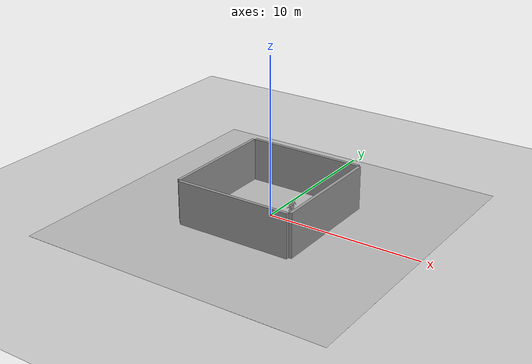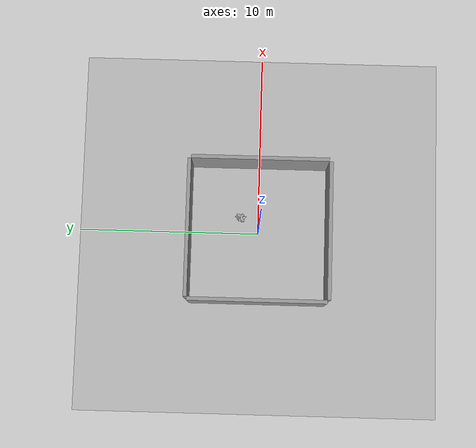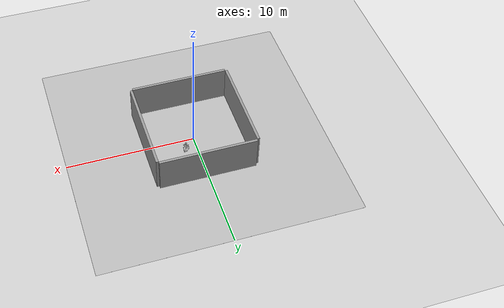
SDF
<sdf version="1.6">
 <world name="default">
  <light name="sun" type="directional">
   <pose>0 0 10 0 -0 0</pose>
   <diffuse>0.8 0.8 0.8 1</diffuse>
   <specular>0.1 0.1 0.1 1</specular>
   <attenuation>
    <range>1000</range>
    <constant>0.9</constant>
    <linear>0.01</linear>
    <quadratic>0.001</quadratic>
   </attenuation>
   <direction>-0.5 0.5 -1</direction>
  </light>
  <model name="ground_plane">
   <static>1</static>
   <link name="link">
    <collision name="collision">
     <geometry><plane><normal>0 0 1</normal><size>100 100</size></plane></geometry>
     <surface><friction><ode><mu>100</mu><mu2>50</mu2></ode></friction></surface>
    </collision>
    <visual name="visual">
     <cast_shadows>0</cast_shadows>
     <geometry><plane><normal>0 0 1</normal><size>100 100</size></plane></geometry>
     <material>
      <script><uri>file://media/materials/scripts/gazebo.material</uri><name>Gazebo/Grey</name></script>
     </material>
    </visual>
   </link>
  </model>
  <gravity>0 0 -9.8</gravity>
  <magnetic_field>6e-06 2.3e-05 -4.2e-05</magnetic_field>
  <atmosphere type="adiabatic"/>
  <physics name="default_physics" default="0" type="ode">
   <max_step_size>0.001</max_step_size>
   <real_time_factor>1</real_time_factor>
   <real_time_update_rate>1000</real_time_update_rate>
  </physics>
  <scene><ambient>0.4 0.4 0.4 1</ambient><background>0.7 0.7 0.7 1</background><shadows>1</shadows></scene>
  <spherical_coordinates>
   <surface_model>EARTH_WGS84</surface_model>
   <latitude_deg>0</latitude_deg>
   <longitude_deg>0</longitude_deg>
   <elevation>0</elevation>
   <heading_deg>0</heading_deg>
  </spherical_coordinates>
  <model name="Floor_room">
   <link name="main">
    <pose>0 0 0.01 0 -0 0</pose>
    <collision name="main_Collision"><geometry><box><size>20 20 0.001</size></box></geometry></collision>
    <visual name="main_Visual">
     <geometry><box><size>20 20 0.001</size></box></geometry>
     <material>
      <script>
       <uri>model://Floor_room/materials/scripts</uri>
       <uri>model://Floor_room/materials/textures</uri>
       <name>floor_room</name>
      </script>
     </material>
    </visual>
   </link>
   <static>1</static>
  </model>
  <model name="grey_wall">
   <static>1</static>
   <link name="link">
    <pose>0 0 1.4 0 -0 0</pose>
    <collision name="collision"><geometry><box><size>7.5 0.2 2.8</size></box></geometry></collision>
    <visual name="visual">
     <cast_shadows>0</cast_shadows>
     <geometry><box><size>7.5 0.2 2.8</size></box></geometry>
     <material>
      <script>
       <uri>model://grey_wall/materials/scripts</uri>
       <uri>model://grey_wall/materials/textures</uri>
       <name>vrc/grey_wall</name>
      </script>
     </material>
    </visual>
   </link>
   <pose>0 -3.85 0 0 -0 0</pose>
  </model>
  <model name="grey_wall_0">
   <static>1</static>
   <link name="link">
    <pose>0 0 1.4 0 -0 0</pose>
    <collision name="collision"><geometry><box><size>7.5 0.2 2.8</size></box></geometry></collision>
    <visual name="visual">
     <cast_shadows>0</cast_shadows>
     <geometry><box><size>7.5 0.2 2.8</size></box></geometry>
     <material>
      <script>
       <uri>model://grey_wall/materials/scripts</uri>
       <uri>model://grey_wall/materials/textures</uri>
       <name>vrc/grey_wall</name>
      </script>
     </material>
    </visual>
   </link>
   <pose>0 3.85 0 0 -0 0</pose>
  </model>
  <model name="grey_wall_1">
   <static>1</static>
   <link name="link">
    <pose>0 0 1.4 0 -0 0</pose>
    <collision name="collision"><geometry><box><size>7.5 0.2 2.8</size></box></geometry></collision>
    <visual name="visual">
     <cast_shadows>0</cast_shadows>
     <geometry><box><size>7.5 0.2 2.8</size></box></geometry>
     <material>
      <script>
       <uri>model://grey_wall/materials/scripts</uri>
       <uri>model://grey_wall/materials/textures</uri>
       <name>vrc/grey_wall</name>
      </script>
     </material>
    </visual>
   </link>
   <pose>3.85 0 0 0 -0 1.57096</pose>
  </model>
  <model name="grey_wall_2">
   <static>1</static>
   <link name="link">
    <pose>0 0 1.4 0 -0 0</pose>
    <collision name="collision"><geometry><box><size>7.5 0.2 2.8</size></box></geometry></collision>
    <visual name="visual">
     <cast_shadows>0</cast_shadows>
     <geometry><box><size>7.5 0.2 2.8</size></box></geometry>
     <material>
      <script>
       <uri>model://grey_wall/materials/scripts</uri>
       <uri>model://grey_wall/materials/textures</uri>
       <name>vrc/grey_wall</name>
      </script>
     </material>
    </visual>
   </link>
   <pose>-3.85 0 0 0 -0 1.57096</pose>
  </model>
  <model name="capsicum_plant_6">
   <link name="link_capsicum_plant_6">
    <visual name="visual">
     <geometry><mesh><uri>model://capsicum_plant_6/meshes/VG07_6.dae</uri></mesh></geometry>
    </visual>
    <collision name="collision">
     <geometry><mesh><uri>model://capsicum_plant_6/meshes/VG07_6.dae</uri></mesh></geometry>
    </collision>
   </link>
   <static>1</static>
   <pose>0.940582 0.940898 0 0 -0 0</pose>
  </model>
 </world>
</sdf>
